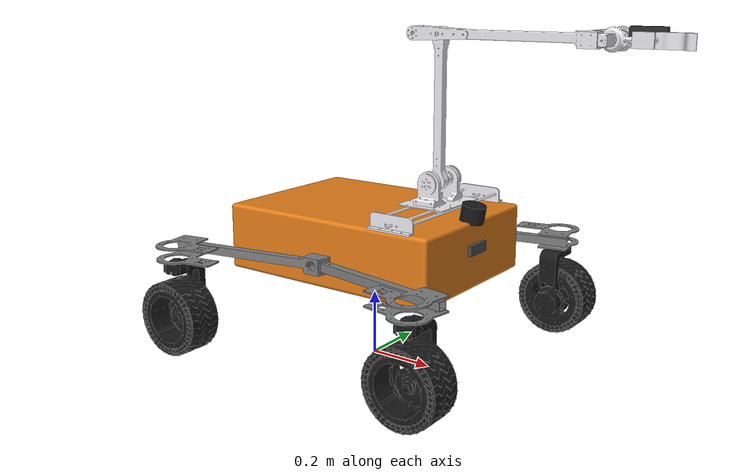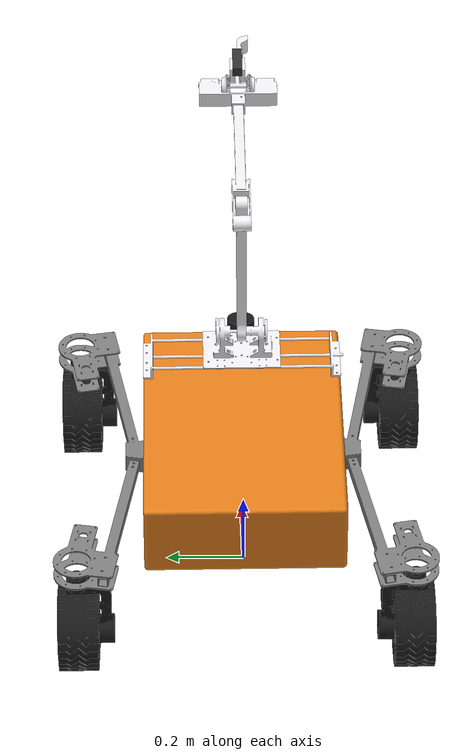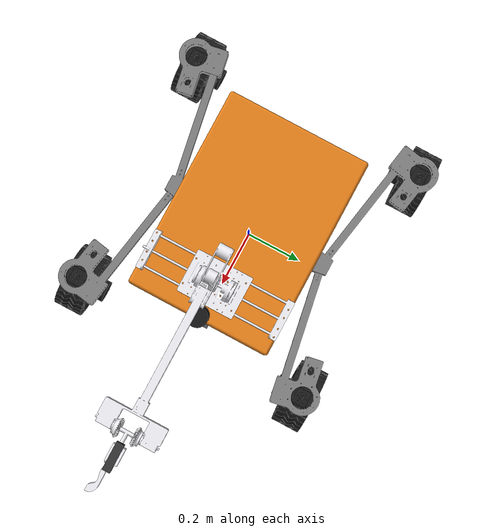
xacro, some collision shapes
<?xml version="1.0"?>
<robot name="chaska_robot" xmlns:xacro="http://www.ros.org/wiki/xacro">

  <!-- true para simulación (Gazebo), false para visualización (RViz) -->
  <xacro:arg name="is_simulation" default="false"/>
  <!-- Suprime el plugin ign_ros2_control individual del rover;
       el URDF unificado provee un único plugin que gestiona todos los joints -->
  <xacro:arg name="with_control_plugin" default="false"/>

  <!-- ── Rover (base móvil) ─────────────────────────────────────────────── -->
  <!-- Incluye: rover_base.xacro, rover_gazebo.xacro, rover_ros2_control.xacro -->
  <xacro:include filename="$(find rover_description)/urdf/rover.urdf.xacro"/>

  <!-- ── Brazo robótico ────────────────────────────────────────────────── -->
  <xacro:include filename="$(find chaska_arm_description)/urdf/chaska_arm.urdf.xacro"/>

  <!-- ── Joint de montaje del brazo sobre el rover ─────────────────────── -->
  <!-- El brazo se sitúa en la parte delantera-central del chasis.
       Ajustar xyz según posición física real de montaje. -->
  <joint name="arm_mount_joint" type="fixed">
    <parent link="base_link"/>
    <child link="arm_base_link"/>
    <origin xyz="0.23 0.0 0.20" rpy="0 0 -1.5708"/>
  </joint>

  <!-- ── Plugin ign_ros2_control ÚNICO para rover + brazo ──────────────── -->
  <!-- Se declara aquí (no en rover_gazebo.xacro ni chaska_arm_gazebo.xacro)
       para que haya un solo controller_manager que gestione los 14 joints. -->
  <gazebo>
    <plugin filename="libign_ros2_control-system.so"
            name="ign_ros2_control::IgnitionROS2ControlPlugin">
      <parameters>$(find chaska_bringup)/config/chaska_controllers.yaml</parameters>
    </plugin>
  </gazebo>

</robot>

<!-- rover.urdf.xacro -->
<robot name="chaska_rover" xmlns:xacro="http://www.ros.org/wiki/xacro">

    <!-- Argument to enable simulation mode (disables real hardware) -->
    <xacro:arg name="is_simulation" default="false"/>
    <!-- When false, the ign_ros2_control plugin is omitted (use in unified URDF
         where chaska_robot.urdf.xacro provides its own single plugin instance) -->
    <xacro:arg name="with_control_plugin" default="true"/>

    <!-- Base model -->
    <xacro:include filename="$(find rover_description)/urdf/rover_base.xacro"/>

    <!-- Gazebo plugins and sensors (only for simulation) -->
    <xacro:include filename="$(find rover_description)/urdf/rover_gazebo.xacro"/>

    <!-- ROS2 Control: conditional between sim and real hardware -->
    <xacro:include filename="$(find rover_description)/urdf/rover_ros2_control.xacro"/>

</robot>

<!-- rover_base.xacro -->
<robot name="chaska_rover" xmlns:xacro="http://www.ros.org/wiki/xacro">

    <!-- ============================
         ROVER DIMENSIONS (parametric)
         ============================ -->
    <xacro:property name="chassis_length" value="0.710"/>
    <xacro:property name="chassis_width"  value="0.510"/>
    <xacro:property name="chassis_height" value="0.20"/>
    <xacro:property name="chassis_mass"   value="15.0"/>

    <xacro:property name="support_length" value="0.60"/>
    <xacro:property name="support_width"  value="0.10"/>
    <xacro:property name="support_height" value="0.10"/>
    <xacro:property name="support_mass"   value="1.0"/>

    <xacro:property name="yaw_size_x" value="0.10"/>
    <xacro:property name="yaw_size_y" value="0.10"/>
    <xacro:property name="yaw_size_z" value="0.15"/>
    <xacro:property name="yaw_mass"   value="1.0"/>

    <xacro:property name="wheel_radius" value="0.111"/>
    <xacro:property name="wheel_width"  value="0.12"/>
    <xacro:property name="wheel_mass"   value="0.8"/>

    <!-- wheel_support positions relative to base_link -->
    <xacro:property name="support_x_offset" value="0.0"/>
    <xacro:property name="support_y_offset" value="0.255"/>
    <xacro:property name="support_z_offset" value="0.075"/>

    <!-- yaw positions relative to wheel_support -->
    <xacro:property name="yaw_x_front"  value="0.419"/>
    <xacro:property name="yaw_x_rear"   value="-0.419"/>
    <xacro:property name="yaw_y_offset" value="0.169"/>
    <xacro:property name="yaw_z_offset" value="-0.0225"/>

    <!-- wheel positions relative to yaw -->
    <xacro:property name="wheel_x_offset" value="0.0"/>
    <xacro:property name="wheel_y_offset" value="0.0119"/>
    <xacro:property name="wheel_z_offset" value="-0.1765"/>

    <!-- ============================
         INERTIA MACROS
         ============================ -->

    <!-- Solid box: x=length, y=width, z=height -->
    <xacro:macro name="box_inertia" params="m x y z">
        <inertial>
            <origin xyz="0 0 0" rpy="0 0 0"/>
            <mass value="${m}"/>
            <inertia
                ixx="${(m/12)*(y*y + z*z)}" ixy="0" ixz="0"
                iyy="${(m/12)*(x*x + z*z)}" iyz="0"
                izz="${(m/12)*(x*x + y*y)}"/>
        </inertial>
    </xacro:macro>

    <!-- Solid cylinder: axis along Y (wheel convention) -->
    <xacro:macro name="cylinder_inertia_y" params="m r l">
        <inertial>
            <origin xyz="0 0 0" rpy="0 0 0"/>
            <mass value="${m}"/>
            <inertia
                ixx="${(m/12)*(3*r*r + l*l)}" ixy="0" ixz="0"
                iyy="${(m/2)*r*r}"             iyz="0"
                izz="${(m/12)*(3*r*r + l*l)}"/>
        </inertial>
    </xacro:macro>

    <!-- ============================
         LINK MACROS
         ============================ -->

    <xacro:macro name="wheel_support" params="name x_pos y_pos reflect passive:=0">
        <link name="${name}_link">
            <visual>
                <origin xyz="0 0 0" rpy="0 0 ${-1.5708*reflect}"/>
                <geometry>
                    <mesh filename="package://rover_description/meshes/wheel_support.stl" scale="0.001 0.001 0.001"/>
                </geometry>
                <material name="gray">
                    <color rgba="0.5 0.5 0.5 1.0"/>
                </material>
            </visual>
            <collision>
                <origin xyz="0 0 0" rpy="0 0 0"/>
                <geometry>
                    <box size="${support_length} ${support_width} ${support_height}"/>
                </geometry>
            </collision>
            <xacro:box_inertia m="${support_mass}"
                               x="${support_length}"
                               y="${support_width}"
                               z="${support_height}"/>
        </link>

        <!-- Fixed side: rigid attachment to chassis -->
        <xacro:if value="${not passive}">
            <joint name="${name}_joint" type="fixed">
                <parent link="base_link"/>
                <child link="${name}_link"/>
                <origin xyz="${x_pos} ${y_pos} ${support_z_offset}" rpy="0 0 0"/>
            </joint>
        </xacro:if>

        <xacro:unless value="${not passive}">
            <joint name="${name}_joint" type="revolute">
                <parent link="base_link"/>
                <child link="${name}_link"/>
                <origin xyz="${x_pos} ${y_pos} ${support_z_offset}" rpy="0 0 0"/>
                <axis xyz="0 1 0"/>
                <limit lower="-0.45" upper="0.45" effort="0" velocity="100"/>
                <dynamics damping="5.0" friction="0.5"/>
            </joint>
        </xacro:unless>
    </xacro:macro>

    <xacro:macro name="rover_yaw" params="name parent x_pos y_pos reflect">
        <link name="${name}_yaw">
            <visual>
                <origin xyz="0 0 0" rpy="0 0 ${-1.5708*reflect}"/>
                <geometry>
                    <mesh filename="package://rover_description/meshes/yaw.stl" scale="0.001 0.001 0.001"/>
                </geometry>
                <material name="black">
                    <color rgba="0.1 0.1 0.1 1.0"/>
                </material>
            </visual>
            <collision>
                <origin xyz="0 0 0" rpy="0 0 0"/>
                <geometry>
                    <box size="${yaw_size_x} ${yaw_size_y} ${yaw_size_z}"/>
                </geometry>
            </collision>
            <xacro:box_inertia m="${yaw_mass}"
                               x="${yaw_size_x}"
                               y="${yaw_size_y}"
                               z="${yaw_size_z}"/>
        </link>

        <joint name="${name}_yaw_joint" type="continuous">
            <parent link="${parent}_link"/>
            <child link="${name}_yaw"/>
            <origin xyz="${x_pos} ${y_pos} ${yaw_z_offset}" rpy="0 0 0"/>
            <axis xyz="0 0 1"/>
            <dynamics damping="0.2"/>
        </joint>
    </xacro:macro>

    <xacro:macro name="rover_wheel" params="name parent x_pos y_pos reflect">
        <link name="${name}_wheel">
            <visual>
                <origin xyz="0 0 0" rpy="0 0 ${1.5708*reflect}"/>
                <geometry>
                    <mesh filename="package://rover_description/meshes/wheel.stl" scale="0.001 0.001 0.001"/>
                </geometry>
                <material name="black">
                    <color rgba="0.1 0.1 0.1 1.0"/>
                </material>
            </visual>
            <collision>
                <origin xyz="0 0 0" rpy="1.5708 0 0"/>
                <geometry>
                    <cylinder radius="${wheel_radius}" length="${wheel_width}"/>
                </geometry>
            </collision>
            <xacro:cylinder_inertia_y m="${wheel_mass}" r="${wheel_radius}" l="${wheel_width}"/>
        </link>

        <joint name="${name}_wheel_joint" type="continuous">
            <parent link="${parent}_yaw"/>
            <child link="${name}_wheel"/>
            <origin xyz="${x_pos} ${y_pos} ${wheel_z_offset}" rpy="0 0 0"/>
            <axis xyz="0 1 0"/>
            <dynamics damping="0.2"/>
        </joint>
    </xacro:macro>

    <!-- ============================
         LINKS
         ============================ -->

    <link name="base_footprint"/>

    <link name="base_link">
        <visual>
            <origin xyz="0 0 0" rpy="0 0 1.5708"/>
            <geometry>
                <mesh filename="package://rover_description/meshes/base_link.stl" scale="0.001 0.001 0.001"/>
            </geometry>
            <material name="orange">
                <color rgba="0.9 0.5 0.1 1.0"/>
            </material>
        </visual>
        <collision>
            <origin xyz="0 0 0" rpy="0 0 0"/>
            <geometry>
                <box size="${chassis_length} ${chassis_width} ${chassis_height}"/>
            </geometry>
        </collision>
        <xacro:box_inertia m="${chassis_mass}"
                           x="${chassis_length}"
                           y="${chassis_width}"
                           z="${chassis_height}"/>
    </link>

    <link name="imu">
        <visual>
            <origin xyz="0 0 0" rpy="0 0 0"/>
            <geometry>
                <box size="0.03 0.03 0.01"/>
            </geometry>
            <material name="gray">
                <color rgba="0.3 0.3 0.3 1"/>
            </material>
        </visual>
    </link>

    <link name="laser">
        <visual>
            <origin xyz="0 0 0" rpy="0 0 0"/>
            <geometry>
                <cylinder radius="0.035" length="0.05"/>
            </geometry>
            <material name="black">
                <color rgba="0.1 0.1 0.1 1"/>
            </material>
        </visual>
    </link>

    <link name="camera">
        <visual>
            <origin xyz="0 0 0" rpy="0 0 0"/>
            <geometry>
                <box size="0.025 0.08 0.03"/>
            </geometry>
            <material name="gray">
                <color rgba="0.3 0.3 0.3 1"/>
            </material>
        </visual>
    </link>

    <link name="camera_optical_frame"/>

    <!-- ============================
         JOINTS
         ============================ -->

    <joint name="base_joint" type="fixed">
        <parent link="base_footprint"/>
        <child link="base_link"/>
        <origin xyz="0 0 0.280" rpy="0 0 0"/>
    </joint>

    <!-- ── Level 1: wheel supports ── -->
    <!-- Left: fixed — anchors the chassis, no rotation -->
    <xacro:wheel_support name="left_support"  x_pos="${support_x_offset}" y_pos=" ${support_y_offset}" reflect="-1" passive="0"/>
    <!-- Right: passive revolute around X — terrain compliance (±15°, damped) -->
    <xacro:wheel_support name="right_support" x_pos="${support_x_offset}" y_pos="-${support_y_offset}" reflect=" 1" passive="1"/>

    <!-- ── Level 2: yaw links (steering, one per wheel) ── -->
    <xacro:rover_yaw name="front_left"  parent="left_support"  x_pos="${yaw_x_front}" y_pos=" ${yaw_y_offset}" reflect="-1"/>
    <xacro:rover_yaw name="front_right" parent="right_support" x_pos="${yaw_x_front}" y_pos="-${yaw_y_offset}" reflect=" 1"/>
    <xacro:rover_yaw name="rear_left"   parent="left_support"  x_pos="${yaw_x_rear}"  y_pos=" ${yaw_y_offset}" reflect="-1"/>
    <xacro:rover_yaw name="rear_right"  parent="right_support" x_pos="${yaw_x_rear}"  y_pos="-${yaw_y_offset}" reflect=" 1"/>

    <!-- ── Level 3: wheels (drive, child of their yaw) ── -->
    <xacro:rover_wheel name="front_left"  parent="front_left"  x_pos="${wheel_x_offset}" y_pos="-${wheel_y_offset}" reflect="-1"/>
    <xacro:rover_wheel name="front_right" parent="front_right" x_pos="${wheel_x_offset}" y_pos=" ${wheel_y_offset}" reflect=" 1"/>
    <xacro:rover_wheel name="rear_left"   parent="rear_left"   x_pos="${wheel_x_offset}" y_pos="-${wheel_y_offset}" reflect="-1"/>
    <xacro:rover_wheel name="rear_right"  parent="rear_right"  x_pos="${wheel_x_offset}" y_pos=" ${wheel_y_offset}" reflect=" 1"/>

    <!-- ── Sensors ── -->
    <joint name="imu_joint" type="fixed">
        <parent link="base_link"/>
        <child link="imu"/>
        <origin xyz="0 0 ${chassis_height/2 + 0.01}" rpy="0 0 0"/>
    </joint>

    <!-- Livox 3D LiDAR: montado adelante-arriba del chasis,
         inclinado -10° en pitch para captar el suelo delante del rover -->
    <joint name="laser_joint" type="fixed">
        <parent link="base_link"/>
        <child link="laser"/>
        <origin xyz="${chassis_length/2 - 0.01} 0 ${chassis_height/2 + 0.12}" rpy="0 0.1745 0"/>
    </joint>

    <joint name="camera_joint" type="fixed">
        <parent link="base_link"/>
        <child link="camera"/>
        <origin xyz="${chassis_length/2} 0 ${chassis_height/2 + 0.02}" rpy="0 0 0"/>
    </joint>

    <joint name="camera_optical_joint" type="fixed">
        <parent link="camera"/>
        <child link="camera_optical_frame"/>
        <origin xyz="0 0 0" rpy="-1.5708 0 -1.5708"/>
    </joint>

</robot>

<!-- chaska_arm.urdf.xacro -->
<robot name="chaska_arm" xmlns:xacro="http://www.ros.org/wiki/xacro">

  <!-- true para simulación (Gazebo), false para visualización (RViz) -->
  <xacro:arg name="is_simulation" default="false"/>

  <!-- Links, joints e inerciales -->
  <xacro:include filename="$(find chaska_arm_description)/urdf/chaska_arm_base.xacro"/>

  <!-- Plugin Gazebo Ignition + materiales -->
  <xacro:include filename="$(find chaska_arm_description)/urdf/chaska_arm_gazebo.xacro"/>

  <!-- Interfaz ros2_control (sim=IgnitionSystem, real=mock) -->
  <xacro:include filename="$(find chaska_arm_description)/urdf/chaska_arm_ros2_control.xacro"/>

</robot>

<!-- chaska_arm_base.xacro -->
<robot name="chaska_arm" xmlns:xacro="http://www.ros.org/wiki/xacro">

  <!-- ========== LINKS ========== -->

  <link name="arm_base_link">
    <visual>
      <origin rpy="0 1.57079632679 0" xyz="0 0 0"/>
      <geometry>
        <mesh filename="package://chaska_arm_description/meshes/base.stl" scale="0.001 0.001 0.001"/>
      </geometry>
      <material name="pearl_white">
        <color rgba="0.94 0.94 0.96 1.0"/>
      </material>
    </visual>
    <collision>
      <origin rpy="0 0 0" xyz="0 0 0.015"/>
      <geometry>
        <cylinder radius="0.075" length="0.030"/>
      </geometry>
    </collision>
    <inertial>
      <origin xyz="0 0 0" rpy="0 0 0"/>
      <mass value="1.5"/>
      <!-- Cilindro r=0.075 h=0.030: Ixx=Iyy=m(3r²+h²)/12, Izz=mr²/2 -->
      <inertia ixx="0.002222" ixy="0" ixz="0"
                               iyy="0.002222" iyz="0"
                                              izz="0.004219"/>
    </inertial>
  </link>

  <link name="link_1">
    <visual>
      <origin rpy="0 1.57079632679 0" xyz="0 0 0"/>
      <geometry>
        <mesh filename="package://chaska_arm_description/meshes/link_1.stl" scale="0.001 0.001 0.001"/>
      </geometry>
      <material name="pearl_white">
        <color rgba="0.94 0.94 0.96 1.0"/>
      </material>
    </visual>
    <collision>
      <origin rpy="0 0 0" xyz="0 0 0.040"/>
      <geometry>
        <box size="0.125 0.125 0.083"/>
      </geometry>
    </collision>
    <inertial>
      <origin xyz="0 0 0" rpy="0 0 0"/>
      <mass value="1.0"/>
      <!-- Cubo s=0.080: I=ms²/6 -->
      <inertia ixx="0.001067" ixy="0" ixz="0"
                               iyy="0.001067" iyz="0"
                                              izz="0.001067"/>
    </inertial>
  </link>

  <link name="link_2">
    <visual>
      <origin rpy="0 1.57079632679 0" xyz="0 0 0"/>
      <geometry>
        <mesh filename="package://chaska_arm_description/meshes/link_2.stl" scale="0.001 0.001 0.001"/>
      </geometry>
      <material name="pearl_white">
        <color rgba="0.94 0.94 0.96 1.0"/>
      </material>
    </visual>
    <collision>
      <origin rpy="0 0 0" xyz="0 0 0.207"/>
      <geometry>
        <box size="0.040 0.040 0.414"/>
      </geometry>
    </collision>
    <inertial>
      <origin xyz="0 0 0.200" rpy="0 0 0"/>
      <mass value="0.5"/>
      <!-- Caja 40×40×400 mm (eje Z): CoM a mitad de longitud -->
      <inertia ixx="0.006733" ixy="0" ixz="0"
                               iyy="0.006733" iyz="0"
                                              izz="0.000133"/>
    </inertial>
  </link>

  <link name="link_3">
    <visual>
      <origin rpy="0 1.57079632679 0" xyz="0 0 0"/>
      <geometry>
        <mesh filename="package://chaska_arm_description/meshes/link_3.stl" scale="0.001 0.001 0.001"/>
      </geometry>
      <material name="pearl_white">
        <color rgba="0.94 0.94 0.96 1.0"/>
      </material>
    </visual>
    <collision>
      <origin rpy="0 0 0" xyz="0 0.254 0"/>
      <geometry>
        <box size="0.040 0.507 0.040"/>
      </geometry>
    </collision>
    <inertial>
      <origin xyz="0 0.2536 0" rpy="0 0 0"/>
      <mass value="0.5"/>
      <!-- Caja 40×507×40 mm (eje Y): CoM a mitad de longitud -->
      <inertia ixx="0.010777" ixy="0" ixz="0"
                               iyy="0.000133" iyz="0"
                                              izz="0.010777"/>
    </inertial>
  </link>

  <link name="link_4">
    <visual>
      <origin rpy="0 1.57079632679 0" xyz="0 0 0"/>
      <geometry>
        <mesh filename="package://chaska_arm_description/meshes/link_4.stl" scale="0.001 0.001 0.001"/>
      </geometry>
      <material name="pearl_white">
        <color rgba="0.94 0.94 0.96 1.0"/>
      </material>
    </visual>
    <collision>
      <origin rpy="0 0 0" xyz="0 0.021 0"/>
      <geometry>
        <box size="0.040 0.043 0.040"/>
      </geometry>
    </collision>
    <inertial>
      <origin xyz="0 0 0" rpy="0 0 0"/>
      <mass value="0.5"/>
      <!-- Caja 40×40×50 mm -->
      <inertia ixx="0.000171" ixy="0" ixz="0"
                               iyy="0.000171" iyz="0"
                                              izz="0.000133"/>
    </inertial>
  </link>

  <link name="link_5">
    <visual>
      <origin rpy="0 1.57079632679 0" xyz="0 0 0"/>
      <geometry>
        <mesh filename="package://chaska_arm_description/meshes/link_5.stl" scale="0.001 0.001 0.001"/>
      </geometry>
      <material name="pearl_white">
        <color rgba="0.94 0.94 0.96 1.0"/>
      </material>
    </visual>
    <collision>
      <origin rpy="0 0 0" xyz="0 0.028 0"/>
      <geometry>
        <box size="0.040 0.055 0.040"/>
      </geometry>
    </collision>
    <inertial>
      <origin xyz="0 0 0" rpy="0 0 0"/>
      <mass value="0.5"/>
      <!-- Caja 40×40×80 mm -->
      <inertia ixx="0.000333" ixy="0" ixz="0"
                               iyy="0.000333" iyz="0"
                                              izz="0.000133"/>
    </inertial>
  </link>

  <link name="link_6">
    <visual>
      <origin rpy="0 1.57079632679 0" xyz="0 0 0"/>
      <geometry>
        <mesh filename="package://chaska_arm_description/meshes/link_6.stl" scale="0.001 0.001 0.001"/>
      </geometry>
      <material name="pearl_white">
        <color rgba="0.94 0.94 0.96 1.0"/>
      </material>
    </visual>
    <collision>
      <origin rpy="0 0 0" xyz="0 0 0"/>
      <geometry>
        <box size="0.030 0.060 0.030"/>
      </geometry>
    </collision>
    <inertial>
      <origin xyz="0 0 0" rpy="0 0 0"/>
      <mass value="0.5"/>
      <!-- Caja 30×30×60 mm -->
      <inertia ixx="0.000187" ixy="0" ixz="0"
                               iyy="0.000187" iyz="0"
                                              izz="0.000075"/>
    </inertial>
  </link>

  <!-- ── RealSense D435 ───────────────────────────────────────────────────── -->

  <link name="depth_camera">
    <visual>
      <origin rpy="0 0 0" xyz="0 0 0"/>
      <geometry>
        <box size="0.090 0.025 0.025"/>
      </geometry>
      <material name="camera_gray">
        <color rgba="0.2 0.2 0.2 1.0"/>
      </material>
    </visual>
    <collision>
      <origin rpy="0 0 0" xyz="0 0 0"/>
      <geometry>
        <box size="0.090 0.025 0.025"/>
      </geometry>
    </collision>
    <inertial>
      <origin xyz="0 0 0" rpy="0 0 0"/>
      <mass value="0.072"/>
      <!-- Caja 90×25×25 mm -->
      <inertia ixx="2.6e-5" ixy="0" ixz="0"
                            iyy="5.0e-5" iyz="0"
                                         izz="5.0e-5"/>
    </inertial>
  </link>

  <!-- Marco óptico: convención ROS (Z adelante, X derecha, Y abajo) -->
  <link name="depth_camera_optical_frame"/>

  <link name="end_effector">
    <visual>
      <origin rpy="0 0 0" xyz="0 0 0"/>
      <geometry>
        <sphere radius="0.005"/>
      </geometry>
      <material name="pearl_white">
        <color rgba="0.94 0.94 0.96 1.0"/>
      </material>
    </visual>
    <collision>
      <origin rpy="0 0 0" xyz="0 0 0"/>
      <geometry>
        <!-- Fix: el box size="0 0 0" original crashea Gazebo -->
        <sphere radius="0.005"/>
      </geometry>
    </collision>
    <inertial>
      <origin xyz="0 0 0" rpy="0 0 0"/>
      <mass value="0.05"/>
      <!-- Esfera r=0.005: I=2mr²/5 -->
      <inertia ixx="5e-7" ixy="0" ixz="0"
                          iyy="5e-7" iyz="0"
                                     izz="5e-7"/>
    </inertial>
  </link>

  <!-- ========== JOINTS ========== -->

  <joint name="joint_1" type="prismatic">
    <parent link="arm_base_link"/>
    <child link="link_1"/>
    <origin rpy="0 0 0" xyz="0 0 0.016015"/>
    <axis xyz="1 0 0"/>
    <limit lower="-0.125" upper="0.125" effort="30.0" velocity="10.0"/>
    <dynamics damping="0.1" friction="0.1"/>
  </joint>

  <joint name="joint_2" type="revolute">
    <parent link="link_1"/>
    <child link="link_2"/>
    <origin xyz="0 0 0.083" rpy="0 0 0"/>
    <axis xyz="1 0 0"/>
    <limit lower="-1.5708" upper="1.5708" effort="30.0" velocity="10.0"/>
    <dynamics damping="0.1" friction="0.1"/>
  </joint>

  <joint name="joint_3" type="revolute">
    <parent link="link_2"/>
    <child link="link_3"/>
    <origin xyz="0 0 0.414" rpy="0 0 0"/>
    <axis xyz="1 0 0"/>
    <limit lower="-1.5708" upper="1.5708" effort="30.0" velocity="10.0"/>
    <dynamics damping="0.1" friction="0.1"/>
  </joint>

  <joint name="joint_4" type="revolute">
    <parent link="link_3"/>
    <child link="link_4"/>
    <origin xyz="0 0.507238 0" rpy="0 0 0"/>
    <axis xyz="1 0 0"/>
    <limit lower="-1.5708" upper="1.5708" effort="30.0" velocity="10.0"/>
    <dynamics damping="0.1" friction="0.1"/>
  </joint>

  <joint name="joint_5" type="revolute">
    <parent link="link_4"/>
    <child link="link_5"/>
    <origin xyz="0 0.0428 0" rpy="0 0 0"/>
    <axis xyz="0 1 0"/>
    <limit lower="-1.5708" upper="1.5708" effort="30.0" velocity="10.0"/>
    <dynamics damping="0.1" friction="0.1"/>
  </joint>

  <joint name="joint_6" type="prismatic">
    <parent link="link_5"/>
    <child link="link_6"/>
    <origin xyz="0 0.055 0" rpy="0 0 0"/>
    <axis xyz="1 0 0"/>
    <limit lower="-0.065" upper="0.02" effort="30.0" velocity="10.0"/>
    <dynamics damping="0.1" friction="0.1"/>
  </joint>

  <joint name="joint_7" type="fixed">
    <parent link="link_5"/>
    <child link="end_effector"/>
    <origin rpy="0 0 0" xyz="0 0 0"/>
  </joint>

  <joint name="depth_camera_joint" type="fixed">
    <parent link="link_5"/>
    <child link="depth_camera"/>
    <origin xyz="0 0.035 0.02" rpy="0 0 1.5708"/>
  </joint>

  <joint name="depth_camera_optical_joint" type="fixed">
    <parent link="depth_camera"/>
    <child link="depth_camera_optical_frame"/>
    <!-- Convención óptica ROS: rotar -90° en X y -90° en Z -->
    <origin xyz="0 0 0" rpy="0 0 0"/>
  </joint>

</robot>
